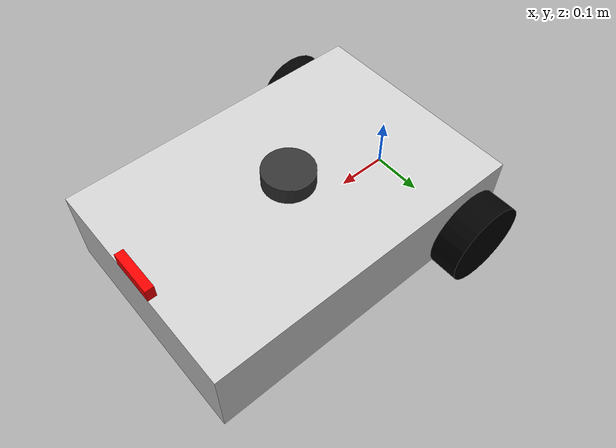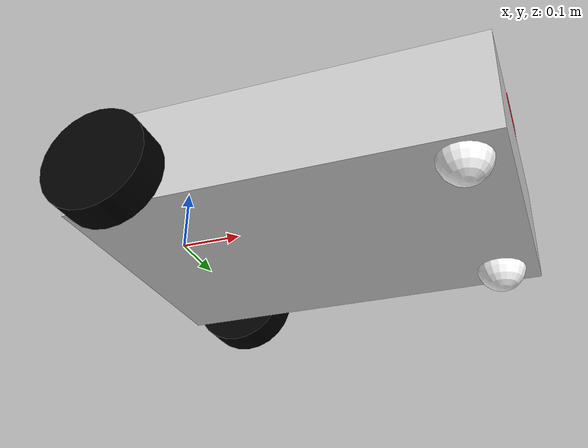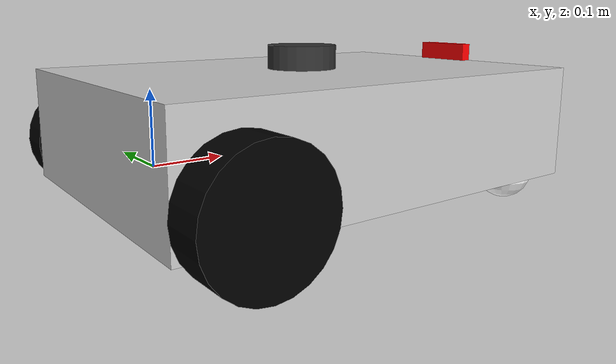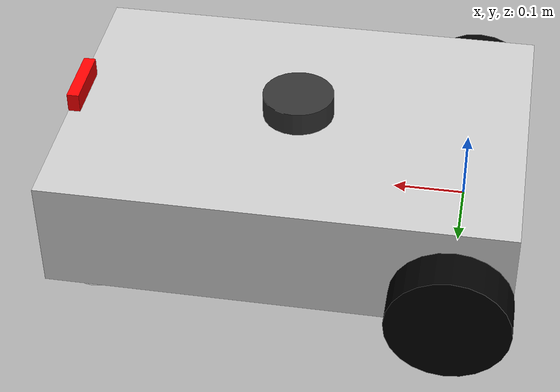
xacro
<?xml version="1.0"?>
<robot xmlns:xacro="http://www.ros.org/wiki/xacro"  name="robot">

    <xacro:arg name="use_ros2_control" default="true"/>
    <xacro:arg name="sim_mode" default="false"/>

    <xacro:include filename="robot_core.xacro" />

    <xacro:if value="$(arg use_ros2_control)">
        <xacro:include filename="ros2_control.xacro" />
    </xacro:if>
    <xacro:unless value="$(arg use_ros2_control)">
        <xacro:include filename="gazebo_control.xacro" />
    </xacro:unless>

    <xacro:include filename="lidar.xacro" />
    <xacro:include filename="depth_camera.xacro" />

</robot>

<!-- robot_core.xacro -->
<robot xmlns:xacro="http://www.ros.org/wiki/xacro" >

    <xacro:include filename="inertial_macros.xacro"/>

    <material name="white">
        <color rgba="1 1 1 1" />
    </material>

    <material name="silver">
        <color rgba="0.8 0.8 0.8 1.0"/>
    </material>

    <material name="orange">
        <color rgba="1 0.3 0.1 1"/>
    </material>

    <material name="blue">
        <color rgba="0.2 0.2 1 1"/>
    </material>

    <material name="black">
        <color rgba="0 0 0 1"/>
    </material>

    <material name="red">
        <color rgba="1 0 0 1"/>
    </material>

    <material name="green">
        <color rgba="0 1 0 1"/>
    </material>

    <material name="purple">
        <color rgba="1 0 1 1"/>
    </material>

    <material name="gray">
        <color rgba="0.2 0.2 0.2 1"/>
    </material>

    <xacro:property name="chassis_length" value="0.64"/>
    <xacro:property name="chassis_width" value="0.44"/>
    <xacro:property name="chassis_height" value="0.16078"/>
    <xacro:property name="chassis_mass" value="4.22"/> <!--0.5kg/m ; 2.3 without luggage base-->

    <xacro:property name="wheel_radius" value="0.084"/>
    <xacro:property name="wheel_thickness" value="0.058"/>
    <xacro:property name="wheel_mass" value="3.1"/>

    <xacro:property name="wheel_offset_x" value="0.08122"/>
    <xacro:property name="wheel_offset_y" value="0.250"/>
    <xacro:property name="wheel_offset_z" value="0.04692"/>

    <xacro:property name="caster_wheel_radius" value="0.04"/>
    <xacro:property name="caster_wheel_mass" value="0.3628739"/>
    <xacro:property name="caster_wheel_offset_x" value="0.58"/>
    <xacro:property name="caster_wheel_offset_y" value="0.17"/>
    <xacro:property name="caster_wheel_offset_z" value="${wheel_offset_z - wheel_radius + caster_wheel_radius}"/>

    <link name="base_link">

    </link>

    <!-- BASE_FOOTPRINT LINK -->

    <joint name="base_footprint_joint" type="fixed">
        <parent link="base_link"/>
        <child link="base_footprint"/>
        <origin xyz="0 0 0" rpy="0 0 0"/>
    </joint>

    <link name="base_footprint">
    </link>

    <!-- CHASSIS LINK -->

    <joint name="chassis_joint" type="fixed">
        <parent link="base_link"/>
        <child link="chassis"/>
        <origin xyz="${-wheel_offset_x} 0 ${-wheel_offset_z}"/>
    </joint>

    <link name="chassis">
        <visual>
            <origin xyz="${chassis_length/2} 0 ${chassis_height/2}"/>
            <geometry>
                <box size="${chassis_length} ${chassis_width} ${chassis_height}"/>
            </geometry>
            <material name="silver"/>
        </visual>
        <collision>
            <origin xyz="${chassis_length/2} 0 ${chassis_height/2}"/>
            <geometry>
                <box size="${chassis_length} ${chassis_width} ${chassis_height}"/>
            </geometry>
        </collision>
        <xacro:inertial_box mass="${chassis_mass}" x="${chassis_length}" y="${chassis_width}" z="${chassis_height}">
            <origin xyz="${chassis_length/2} 0 ${chassis_height/2}" rpy="0 0 0"/>
        </xacro:inertial_box>
    </link>

    <gazebo reference="chassis">
        <material>Gazebo/Silver</material>
    </gazebo>

    <!-- LEFT WHEEL LINK -->

    <joint name="left_wheel_joint" type="continuous">
        <parent link="base_link"/>
        <child link="left_wheel"/>
        <origin xyz="0 ${wheel_offset_y} 0" rpy="-${pi/2} 0 0" />
        <axis xyz="0 0 1"/>
    </joint>

    <link name="left_wheel">
        <visual>
            <geometry>
                <cylinder radius="${wheel_radius}" length="${wheel_thickness}"/>
            </geometry>
            <material name="black"/>
        </visual>
        <collision>
            <geometry>
                <sphere radius="${wheel_radius}"/>
            </geometry>
        </collision>
        <xacro:inertial_cylinder mass="${wheel_mass}" length="${wheel_thickness}" radius="${wheel_radius}">
            <origin xyz="0 0 0" rpy="0 0 0"/>
        </xacro:inertial_cylinder>
    </link>

    <gazebo reference="left_wheel">
        <material>Gazebo/Black</material>
    </gazebo>

    <!-- RIGHT WHEEL LINK -->

    <joint name="right_wheel_joint" type="continuous">
        <parent link="base_link"/>
        <child link="right_wheel"/>
        <origin xyz="0 ${-wheel_offset_y} 0" rpy="${pi/2} 0 0" />
        <axis xyz="0 0 -1"/>
    </joint>

    <link name="right_wheel">
        <visual>
            <geometry>
                <cylinder radius="${wheel_radius}" length="${wheel_thickness}"/>
            </geometry>
            <material name="black"/>
        </visual>
        <collision>
            <geometry>
                <sphere radius="${wheel_radius}"/>
            </geometry>
        </collision>
        <xacro:inertial_cylinder mass="${wheel_mass}" length="${wheel_thickness}" radius="${wheel_radius}">
            <origin xyz="0 0 0" rpy="0 0 0"/>
        </xacro:inertial_cylinder>
    </link>

    <gazebo reference="right_wheel">
        <material>Gazebo/Black</material>
    </gazebo>

    <!-- LEFT CASTER WHEEL LINK -->

    <joint name="left_caster_wheel_joint" type="fixed">
        <parent link="chassis"/>
        <child link="left_caster_wheel"/>
        <origin xyz="${caster_wheel_offset_x} ${caster_wheel_offset_y} ${caster_wheel_offset_z}"/>
    </joint>

    <link name="left_caster_wheel">
        <visual>
            <geometry>
                <sphere radius="${caster_wheel_radius}"/>
            </geometry>
            <material name="white"/>
        </visual>
        <collision>
            <geometry>
                <sphere radius="${caster_wheel_radius}"/>
            </geometry>
        </collision>
        <xacro:inertial_sphere mass="${caster_wheel_mass}" radius="${caster_wheel_radius}">
            <origin xyz="0 0 0" rpy="0 0 0"/>
        </xacro:inertial_sphere>
    </link>

    <gazebo reference="left_caster_wheel">
        <material>Gazebo/White</material>
        <mu1 value="0.001"/>
        <mu2 value="0.001"/>
    </gazebo>

    <!-- RIGHT CASTER WHEEL LINK -->

    <joint name="right_caster_wheel_joint" type="fixed">
        <parent link="chassis"/>
        <child link="right_caster_wheel"/>
        <origin xyz="${caster_wheel_offset_x} ${-caster_wheel_offset_y} ${caster_wheel_offset_z}"/>
    </joint>

    <link name="right_caster_wheel">
        <visual>
            <geometry>
                <sphere radius="${caster_wheel_radius}"/>
            </geometry>
            <material name="white"/>
        </visual>
        <collision>
            <geometry>
                <sphere radius="${caster_wheel_radius}"/>
            </geometry>
        </collision>
        <xacro:inertial_sphere mass="${caster_wheel_mass}" radius="${caster_wheel_radius}">
            <origin xyz="0 0 0" rpy="0 0 0"/>
        </xacro:inertial_sphere>
    </link>

    <gazebo reference="right_caster_wheel">
        <material>Gazebo/White</material>
        <mu1 value="0.001"/>
        <mu2 value="0.001"/>
    </gazebo>

</robot>

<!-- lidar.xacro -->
<robot xmlns:xacro="http://www.ros.org/wiki/xacro" >

    <joint name="laser_joint" type="fixed">
        <parent link="chassis"/>
        <child link="laser_frame"/>
        <origin xyz="0.32 0 0.175" rpy="0 0 0"/> <!---${pi/2}-->
    </joint>

    <link name="laser_frame">
        <visual>
            <geometry>
                <cylinder radius="0.05" length="0.04"/>
            </geometry>
            <material name="gray"/>
        </visual>
        <collision>
            <geometry>
                <cylinder radius="0.05" length="0.04"/>
            </geometry>
        </collision>
        <xacro:inertial_cylinder mass="0.1" length="0.04" radius="0.05">
            <origin xyz="0 0 0" rpy="0 0 0"/>
        </xacro:inertial_cylinder>
    </link>

    <gazebo reference="laser_frame">
        <material>Gazebo/Gray</material>

        <sensor name="laser" type="ray">
            <pose> 0 0 0 0 0 0 </pose>
            <visualize>false</visualize>
            <update_rate>10</update_rate>
            <ray>
                <scan>
                    <horizontal>
                        <samples>360</samples>
                        <min_angle>-3.14</min_angle>
                        <max_angle>3.14</max_angle>
                    </horizontal>
                </scan>
                <range>
                    <min>0.3</min>
                    <max>12</max>
                </range>
            </ray>
            <plugin name="laser_controller" filename="libgazebo_ros_ray_sensor.so">
                <ros>
                    <argument>~/out:=scan</argument>
                </ros>
                <output_type>sensor_msgs/LaserScan</output_type>
                <frame_name>laser_frame</frame_name>
            </plugin>
        </sensor>
    </gazebo>

</robot>

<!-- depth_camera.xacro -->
<robot xmlns:xacro="http://www.ros.org/wiki/xacro" >

    <joint name="camera_joint" type="fixed">
        <parent link="chassis"/>
        <child link="camera_link"/>
        <origin xyz="0.6315 0 0.17428" rpy="0 0 0"/>
    </joint>

    <link name="camera_link">
        <visual>
            <geometry>
                <box size="0.017 0.09 0.027"/>
            </geometry>
            <material name="red"/>
        </visual>
    </link>

    <joint name="camera_optical_joint" type="fixed">
        <parent link="camera_link"/>
        <child link="camera_link_optical"/>
        <origin xyz="0 0 0" rpy="${-pi/2} 0 ${-pi/2}"/>
    </joint>

    <link name="camera_link_optical"></link>

    <gazebo reference="camera_link">
        <material>Gazebo/Red</material>

        <sensor name="camera" type="depth">
            <pose> 0 0 0 0 0 0 </pose>
            <visualize>true</visualize>
            <update_rate>10</update_rate>
            <camera>
                <horizontal_fov>1.089</horizontal_fov>
                <image>
                    <format>B8G8R8</format>
                    <width>640</width>
                    <height>480</height>
                </image>
                <clip>
                    <near>0.05</near>
                    <far>8.0</far>
                </clip>
            </camera>
            <plugin name="camera_controller" filename="libgazebo_ros_camera.so">
                <frame_name>camera_link_optical</frame_name>
                <min_depth>0.1</min_depth>
                <max_depth>100.0</max_depth>
            </plugin>
        </sensor>
    </gazebo>

</robot>
